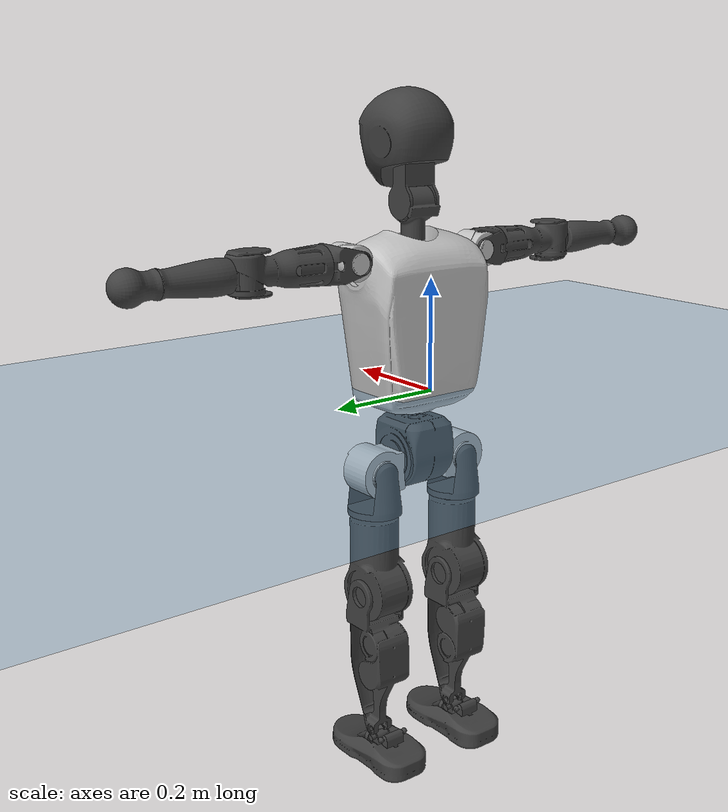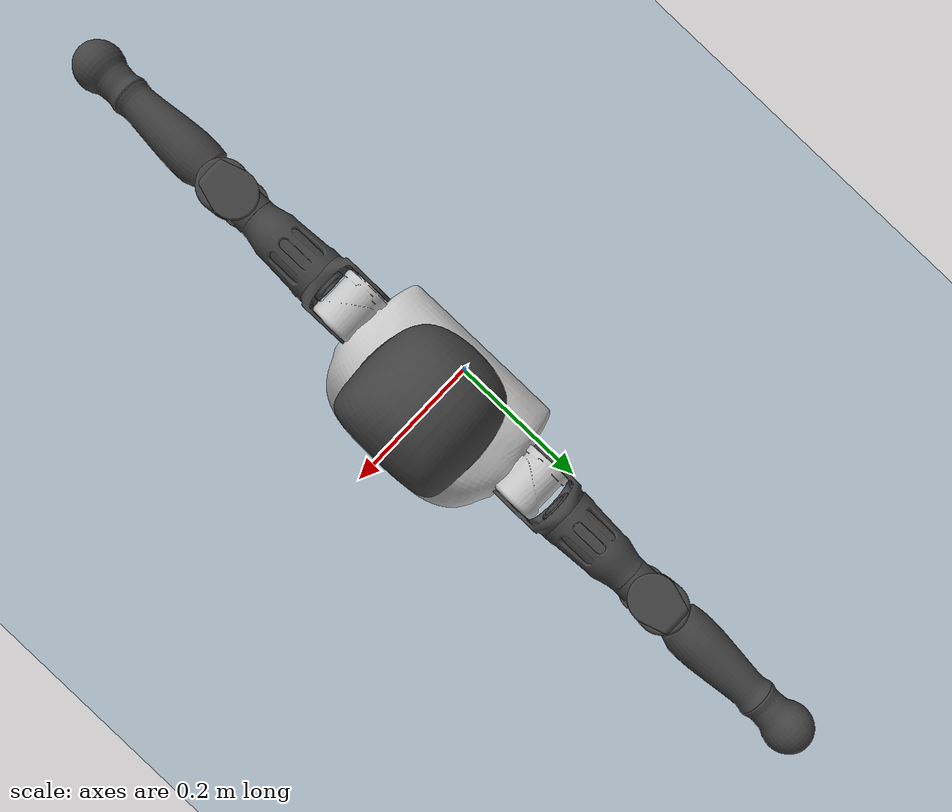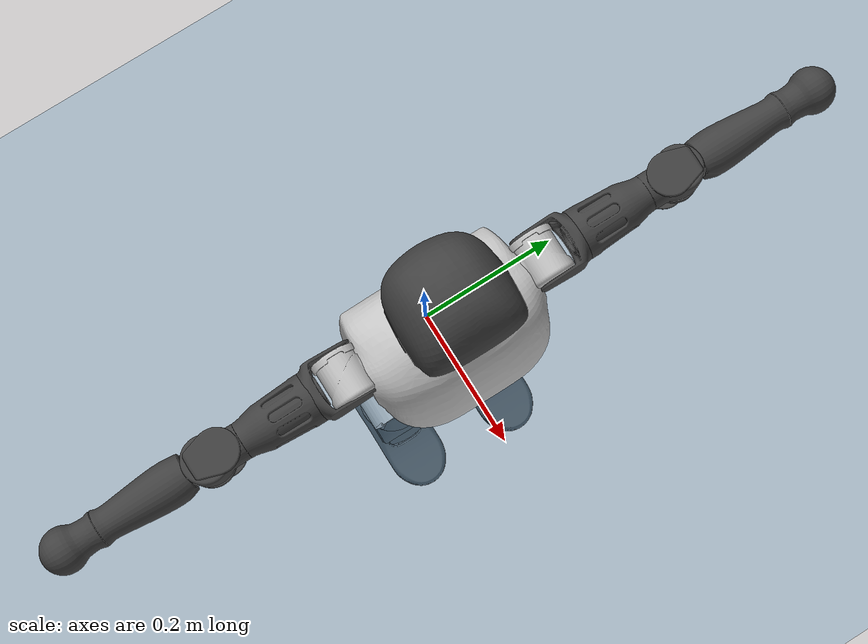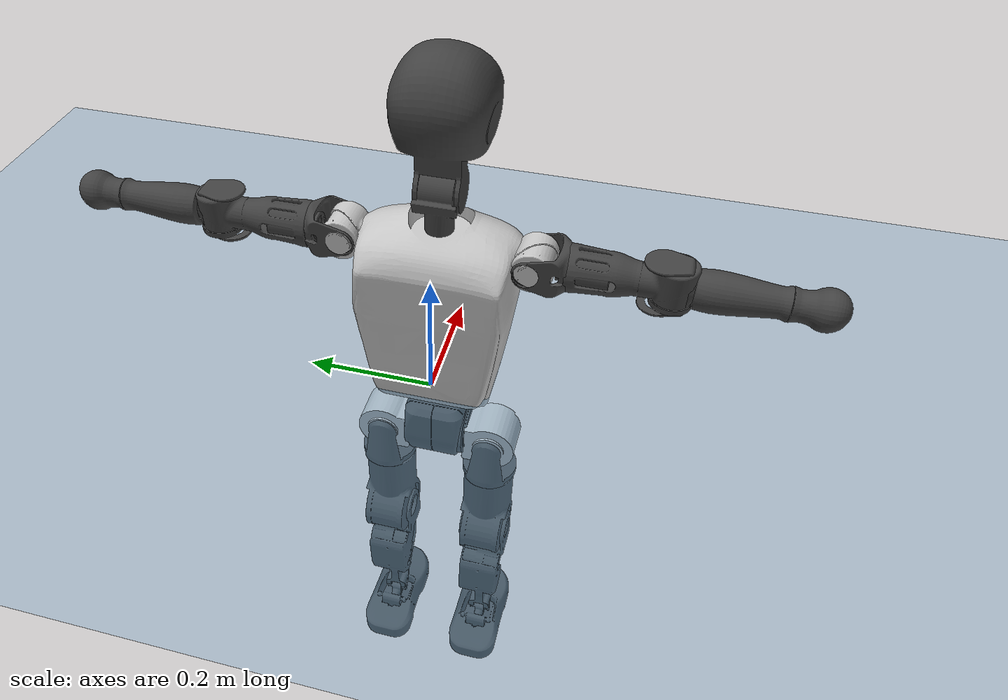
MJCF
<mujoco model="T1">
  <compiler angle="radian" assetdir="assets" balanceinertia="true" inertiafromgeom="false"/>

  <option timestep="0.005" density="1.2" viscosity="2e-05"/>

  <size nkey="1"/>

  <visual>
    <quality shadowsize="8192"/>
    <map shadowclip="0.5"/>
  </visual>

  <default>
    <default class="/">
      <joint armature="0.01" damping="0.01" frictionloss="0.1"/>
      <geom contype="0" conaffinity="0" group="1" solref="-1000 -80"/>
      <site size="0.01 0.005 0.005" group="5"/>
      <general forcelimited="true" biastype="affine" gainprm="25" biasprm="0 -25 -0.6"/>
      <default class="t1">
        <geom rgba="0.25 0.25 0.25 1"/>
        <default class="visual">
          <geom type="mesh" group="2"/>
        </default>
        <default class="collision">
          <geom group="3"/>
        </default>
        <default class="foot">
          <geom size="0.1115 0.05 0.015" type="box" condim="6" group="4" priority="1" solimp="0.015 1 0.015"/>
        </default>
        <default class="reward_collision_sphere">
          <geom group="5" rgba="1 0 0 1"/>
        </default>
      </default>
    </default>
  </default>

  <asset>
    <texture type="skybox" colorspace="auto" name="//unnamed_texture_0" builtin="gradient" rgb1="0.95 0.95 0.95" rgb2="0.95 0.95 0.95" width="100" height="600"/>
    <texture type="2d" colorspace="auto" name="texplane" builtin="checker" rgb1="0.345 0.575 0.748" rgb2="0.345 0.575 0.748" markrgb="1 1 1" width="512" height="512"/>
    <material name="MatPlane" class="/" texture="texplane" texuniform="true" texrepeat="2 2" specular="0.9"/>
    <mesh name="Trunk" class="/" file="Trunk.stl"/>
    <mesh name="H1" class="/" file="H1.stl"/>
    <mesh name="H2" class="/" file="H2.stl"/>
    <mesh name="AL1" class="/" file="AL1.stl"/>
    <mesh name="AL2" class="/" file="AL2.stl"/>
    <mesh name="AL3" class="/" file="AL3.stl"/>
    <mesh name="left_hand_link" class="/" file="left_hand_link.stl"/>
    <mesh name="AR1" class="/" file="AR1.stl"/>
    <mesh name="AR2" class="/" file="AR2.stl"/>
    <mesh name="AR3" class="/" file="AR3.stl"/>
    <mesh name="right_hand_link" class="/" file="right_hand_link.stl"/>
    <mesh name="Waist" class="/" file="Waist.stl"/>
    <mesh name="Hip_Pitch_Left" class="/" file="Hip_Pitch_Left.stl"/>
    <mesh name="Hip_Roll_Left" class="/" file="Hip_Roll_Left.stl"/>
    <mesh name="Hip_Yaw_Left" class="/" file="Hip_Yaw_Left.stl"/>
    <mesh name="Shank_Left" class="/" file="Shank_Left.stl"/>
    <mesh name="Ankle_Cross_Left" class="/" file="Ankle_Cross_Left.stl"/>
    <mesh name="left_foot_link" class="/" file="left_foot_link.stl"/>
    <mesh name="Hip_Pitch_Right" class="/" file="Hip_Pitch_Right.stl"/>
    <mesh name="Hip_Roll_Right" class="/" file="Hip_Roll_Right.stl"/>
    <mesh name="Hip_Yaw_Right" class="/" file="Hip_Yaw_Right.stl"/>
    <mesh name="Shank_Right" class="/" file="Shank_Right.stl"/>
    <mesh name="Ankle_Cross_Right" class="/" file="Ankle_Cross_Right.stl"/>
    <mesh name="right_foot_link" class="/" file="right_foot_link.stl"/>
  </asset>

  <worldbody>
    <geom name="floor" class="/" size="100 100 0.125" type="plane" group="0" material="MatPlane"/>
    <light name="toplight_shadow" class="/" pos="0 0 5" dir="0.0990148 0.0990148 -0.990148" type="directional" ambient="0.04 0.04 0.04" diffuse="0.55 0.55 0.55" specular="0.12 0.12 0.12"/>
    <light name="toplight_fill" class="/" pos="0 0 5" dir="0.0990148 0.0990148 -0.990148" type="directional" castshadow="false" ambient="0.04 0.04 0.04" diffuse="0.3 0.3 0.3" specular="0.08 0.08 0.08"/>
    <body name="trunk" childclass="t1" pos="7.33014e-05 -5.09849e-06 0.000222669" quat="1 -8.61752e-05 0.00013857 0.000177655">
      <inertial pos="0.0423605 -0.00104825 0.113056" quat="0.999957 -0.00112048 -0.00797849 -0.00450552" mass="8.81432" diaginertia="0.0269858 0.0402995 0.0777876"/>
      <joint name="//unnamed_joint_0" type="free" armature="0" damping="0" frictionloss="0"/>
      <geom name="//unnamed_geom_1" class="visual" rgba="0.76 0.76 0.76 1" mesh="Trunk"/>
      <geom name="//unnamed_geom_2" class="collision" size="0.068383 0.0911773 0.136766" pos="0.046961 0 0.128791" type="box"/>
      <geom name="//unnamed_geom_3" class="reward_collision_sphere" size="0.104854" pos="0.046961 0 0.107326"/>
      <geom name="//unnamed_geom_4" class="reward_collision_sphere" size="0.0136766" pos="0.046961 0.0747473 0"/>
      <geom name="//unnamed_geom_5" class="reward_collision_sphere" size="0.0136766" pos="0.046961 -0.0747473 0"/>
      <geom name="//unnamed_geom_6" class="reward_collision_sphere" size="0.0136766" pos="0.046961 0.0940936 0.193186"/>
      <geom name="//unnamed_geom_7" class="reward_collision_sphere" size="0.0136766" pos="0.046961 -0.0940936 0.193186"/>
      <site name="imu" pos="0.00800267 -0.00416001 -0.00457663" size="0.00911773"/>
      <camera name="track" pos="0 -1.75876 0" quat="0.707107 0.707107 0 0" mode="trackcom"/>
      <camera name="ego_camera" pos="0.0954874 0 0.450767" quat="-0.5 -0.5 0.5 0.5"/>
      <body name="H1" pos="0.0495015 0.000411088 0.260436" quat="1 0.000233056 0.000392397 -0.000168325">
        <inertial pos="-0.00144122 -0.00155312 0.0613216" quat="0.762526 -0.0132229 0.00210364 0.646819" mass="0.341668" diaginertia="7.16253e-05 0.000117745 0.000216627"/>
        <joint name="AAHead_yaw" pos="0 0 0" axis="0.000277696 4.19714e-05 1" stiffness="0.00185247" range="-1.58758 1.55826" armature="0.00912371" damping="0.00871256" frictionloss="0.0924311"/>
        <geom name="//unnamed_geom_8" class="visual" mesh="H1"/>
        <body name="H2" pos="-0.000565091 -0.00133261 0.0659796" quat="1 -0.000172186 1.18572e-06 8.68408e-07">
          <inertial pos="0.00688641 0.00188152 0.105261" quat="0.988692 0.103988 -0.0763782 -0.0764327" mass="0.486272" diaginertia="0.000590129 0.0010164 0.00243229"/>
          <joint name="Head_pitch" pos="0 0 0" axis="-0.000565721 -1 -0.00028016" range="-1.22034 0.341878" armature="0.00877073" damping="0.00789894" frictionloss="0.0912816"/>
          <geom name="//unnamed_geom_9" class="visual" mesh="H2"/>
          <geom name="//unnamed_geom_10" class="collision" size="0.0729418" pos="0.00782683 0 0.118058"/>
          <geom name="//unnamed_geom_11" class="reward_collision_sphere" size="0.0820596" pos="0.0156537 0 0.107326"/>
        </body>
      </body>
      <body name="AL1" pos="0.046397 0.0942797 0.236058" quat="1 -0.00023747 0.000488836 -0.000187222">
        <inertial pos="-0.00169025 0.0383455 0.00108465" quat="0.505423 0.491739 -0.505916 0.496779" mass="0.400649" diaginertia="0.000398594 0.000679622 0.000411104"/>
        <joint name="Left_Shoulder_Pitch" pos="0 0 0" axis="0.00184287 0.999997 -0.00170306" range="-3.32692 1.23027" armature="0.00924311" damping="0.0114227" frictionloss="0.0912907"/>
        <geom name="//unnamed_geom_12" class="visual" rgba="0.76 0.76 0.76 1" mesh="AL1"/>
        <body name="AL2" pos="0.00013215 0.0434992 -0.00017142" quat="1 -0.000817332 -0.000401795 0.000253194">
          <inertial pos="0.0016525 0.0336636 -0.00024513" quat="0.488134 0.513653 -0.486755 0.510838" mass="0.125812" diaginertia="0.000119166 0.000184752 0.000254278"/>
          <joint name="Left_Shoulder_Roll" pos="0 0 0" axis="-0.999988 -0.00368186 0.00317388" range="-1.56226 1.73158" armature="0.00869333" damping="0.00276258" frictionloss="0.0946616"/>
          <geom name="//unnamed_geom_13" class="visual" mesh="AL2"/>
          <body name="AL3" pos="-0.000153141 0.0547889 9.19182e-05" quat="1 0.000291621 0.000676526 -0.000105216">
            <inertial pos="0.000306832 0.0752518 -0.000313894" quat="0.706434 0.707776 -0.000558899 0.00203802" mass="0.784605" diaginertia="0.00382739 0.00681597 0.000907578"/>
            <joint name="Left_Elbow_Pitch" pos="0 0 0" axis="0.000468297 -0.999999 -0.00140785" range="-2.25405 2.2625" armature="0.00898127" damping="0.0113793" frictionloss="0.0899784"/>
            <geom name="//unnamed_geom_14" class="visual" mesh="AL3"/>
            <geom name="//unnamed_geom_15" class="collision" size="0.0273532 0.068383" pos="0 0.043969 0" quat="0.707105 0.707108 0 0" type="cylinder"/>
            <geom name="//unnamed_geom_16" class="reward_collision_sphere" size="0.0328238"/>
            <body name="left_hand_link" pos="0.000343836 0.131341 0.000327273" quat="1 -0.000205561 0.000387033 -0.000403925">
              <inertial pos="-0.000210793 0.0973023 -0.000493742" quat="0.705986 0.708218 -0.00259322 0.00233549" mass="0.242867" diaginertia="0.00231628 0.00416485 0.000302904"/>
              <joint name="Left_Elbow_Yaw" pos="0 0 0" axis="-0.00397361 -0.00557054 0.999977" range="-2.44745 0.00356081" armature="0.00920771" damping="0.0126841" frictionloss="0.0984276"/>
              <geom name="//unnamed_geom_17" class="visual" mesh="left_hand_link"/>
              <geom name="//unnamed_geom_18" class="collision" size="0.0273532 0.0797801" pos="0 0.114319 0" quat="0.707105 0.707108 0 0" type="cylinder"/>
              <geom name="//unnamed_geom_19" class="reward_collision_sphere" size="0.0455886"/>
              <geom name="//unnamed_geom_20" class="reward_collision_sphere" size="0.031912" pos="0 0.0967318 0"/>
              <geom name="//unnamed_geom_21" class="reward_collision_sphere" size="0.031912" pos="0 0.189067 0"/>
            </body>
          </body>
        </body>
      </body>
      <body name="AR1" pos="0.0438135 -0.092528 0.234996" quat="1 -1.43318e-05 0.000511315 0.000183345">
        <inertial pos="-0.000657895 -0.0397606 0.00050371" quat="0.504459 0.495681 -0.503738 0.496053" mass="0.394762" diaginertia="0.000398357 0.000676925 0.000416068"/>
        <joint name="Right_Shoulder_Pitch" pos="0 0 0" axis="-0.00303953 -0.999977 0.0061317" stiffness="0.00800046" range="-1.20081 3.29924" armature="0.0092376" damping="0.0107602" frictionloss="0.0908139"/>
        <geom name="//unnamed_geom_22" class="visual" rgba="0.76 0.76 0.76 1" mesh="AR1"/>
        <body name="AR2" pos="-0.00164151 -0.0401503 -0.000235333" quat="1 0.000311155 -9.09685e-05 -5.39138e-06">
          <inertial pos="0.00359981 -0.0342785 0.000696629" quat="0.509347 0.486709 -0.514576 0.488765" mass="0.120723" diaginertia="0.000115083 0.000175887 0.00024962"/>
          <joint name="Right_Shoulder_Roll" pos="0 0 0" axis="-0.999977 -0.00103683 -0.00666708" range="-1.75786 1.54734" armature="0.00897411" damping="0.00588128" frictionloss="0.0864718"/>
          <geom name="//unnamed_geom_23" class="visual" mesh="AR2"/>
          <body name="AR3" pos="0.000625316 -0.0517431 0.000451049" quat="1 -4.1147e-05 0.00015648 -8.93417e-05">
            <inertial pos="-0.000293917 -0.0749338 0.00043402" quat="0.71289 0.701257 -0.00120365 0.00503121" mass="0.78365" diaginertia="0.0038305 0.00669809 0.000886609"/>
            <joint name="Right_Elbow_Pitch" pos="0 0 0" axis="0.000159456 1 0.000264144" stiffness="0.00309737" range="-2.27311 2.26772" armature="0.00893411" damping="0.0055069" frictionloss="0.0971101"/>
            <geom name="//unnamed_geom_24" class="visual" mesh="AR3"/>
            <geom name="//unnamed_geom_25" class="collision" size="0.0273532 0.068383" pos="0 -0.043969 0" quat="0.707105 0.707108 0 0" type="cylinder"/>
            <geom name="//unnamed_geom_26" class="reward_collision_sphere" size="0.0328238"/>
            <body name="right_hand_link" pos="-0.0013692 -0.130005 -0.000937827" quat="1 8.43297e-06 -0.000359521 0.000119489">
              <inertial pos="-0.000193765 -0.0965265 0.00203348" quat="0.709148 0.705054 0.00273707 0.000985459" mass="0.244771" diaginertia="0.00236835 0.00418325 0.000301058"/>
              <joint name="Right_Elbow_Yaw" pos="0 0 0" axis="0.00455525 0.000943932 0.999989" range="-0.00760197 2.44037" armature="0.00989004" damping="0.0065834" frictionloss="0.0916852"/>
              <geom name="//unnamed_geom_27" class="visual" mesh="right_hand_link"/>
              <geom name="//unnamed_geom_28" class="collision" size="0.0273532 0.0797801" pos="0 -0.114319 0" quat="0.707105 0.707108 0 0" type="cylinder"/>
              <geom name="//unnamed_geom_29" class="reward_collision_sphere" size="0.0455886"/>
              <geom name="//unnamed_geom_30" class="reward_collision_sphere" size="0.031912" pos="0 -0.0967318 0"/>
              <geom name="//unnamed_geom_31" class="reward_collision_sphere" size="0.031912" pos="0 -0.189067 0"/>
            </body>
          </body>
        </body>
      </body>
      <body name="Waist" pos="0.0490605 -0.00211113 -0.124011" quat="1 -3.99429e-06 -0.000149491 -0.000108527">
        <inertial pos="0.00277215 -0.000510685 0.00831586" quat="0.982779 0.000380646 -0.184754 0.00321947" mass="1.93871" diaginertia="0.00157275 0.00273448 0.00676912"/>
        <joint name="Waist" pos="0 0 0" axis="0.000392182 0.00239271 0.999997" range="-1.53809 1.55177" armature="0.00884955" damping="0.011435" frictionloss="0.0890874"/>
        <geom name="//unnamed_geom_32" class="visual" mesh="Waist"/>
        <body name="Hip_Pitch_Left" pos="-0.000535995 0.0933929 0.000238725" quat="1 0.000112747 -0.000483095 6.24231e-06">
          <inertial pos="0.00124822 -0.00520195 -0.0196287" quat="0.97515 0.221055 0.0146547 0.00134914" mass="0.777395" diaginertia="0.00053238 0.000790059 0.00180069"/>
          <joint name="Left_Hip_Pitch" pos="0 0 0" axis="0.000124028 0.999999 -0.00126896" range="-1.80466 1.56131" armature="0.00916965" damping="0.004976" frictionloss="0.0913251"/>
          <geom name="//unnamed_geom_33" class="visual" rgba="0.76 0.76 0.76 1" mesh="Hip_Pitch_Left"/>
          <body name="Hip_Roll_Left" pos="-0.000410217 -9.16393e-05 -0.020847" quat="1 -0.000103223 0.000111168 -3.74485e-06">
            <inertial pos="0.00126505 6.86881e-05 -0.0570453" quat="0.708011 -0.00612458 -0.00673919 0.706142" mass="0.290083" diaginertia="0.000509561 0.000785887 0.000723617"/>
            <joint name="Left_Hip_Roll" pos="0 0 0" axis="-0.999996 0.00265354 -0.000199173" range="-1.57481 0.21062" armature="0.00905709" damping="0.00842144" frictionloss="0.0922557"/>
            <geom name="//unnamed_geom_34" class="visual" mesh="Hip_Roll_Left"/>
            <geom name="//unnamed_geom_35" class="reward_collision_sphere" size="0.0501475"/>
            <body name="Hip_Yaw_Left" pos="0.00172565 -0.0011692 -0.0882948" quat="1 2.68664e-05 0.000203762 -0.000236062">
              <inertial pos="-0.00602924 -0.000237562 -0.0952529" quat="0.700048 -0.0369236 -0.0369333 0.712183" mass="1.66086" diaginertia="0.00760428 0.0130261 0.00364898"/>
              <joint name="Left_Hip_Yaw" pos="0 0 0" axis="-0.00111495 0.000324689 -0.999999" range="-1.01006 1.01806" armature="0.00906891" damping="0.0140054" frictionloss="0.0911206"/>
              <geom name="//unnamed_geom_36" class="visual" mesh="Hip_Yaw_Left"/>
              <geom name="//unnamed_geom_37" class="collision" size="0.0455886 0.0729418" type="cylinder"/>
              <body name="Shank_Left" pos="-0.00912248 9.74139e-05 -0.143386" quat="1 -2.71447e-05 0.000184191 0.00035896">
                <inertial pos="-0.00427943 -0.000236337 -0.133462" quat="0.997564 0.0019464 -0.0235197 0.0656405" mass="1.28936" diaginertia="0.010231 0.0179159 0.00262321"/>
                <joint name="Left_Knee_Pitch" pos="0 0 0" axis="-0.00407882 0.999987 0.00319751" range="-0.0164533 2.34596" armature="0.00899162" damping="0.00677085" frictionloss="0.0941932"/>
                <geom name="//unnamed_geom_38" class="visual" mesh="Shank_Left"/>
                <geom name="//unnamed_geom_39" class="collision" size="0.0455886 0.068383" pos="0 0 -0.128791" type="cylinder"/>
                <geom name="//unnamed_geom_40" class="reward_collision_sphere" size="0.0592652"/>
                <body name="Ankle_Cross_Left" pos="6.16023e-05 7.21186e-05 -0.300653" quat="1 0.000261643 -0.000199879 -0.000228743">
                  <inertial pos="-0.00322782 -0.000708985 -0.0102803" quat="0.441192 0.549372 0.553997 0.443427" mass="0.0563154" diaginertia="8.70018e-06 1.37204e-05 1.64972e-05"/>
                  <joint name="Left_Ankle_Pitch" pos="0 0 0" axis="-0.000316008 0.999993 0.00375856" stiffness="0.00107653" range="-0.904822 0.334003" armature="0.00953073" damping="0.00340109" frictionloss="0.0948192"/>
                  <geom name="//unnamed_geom_41" class="visual" mesh="Ankle_Cross_Left"/>
                  <body name="left_foot_link" pos="-0.000387201 -0.000196182 -0.0147107" quat="1 0.000285699 -1.87061e-05 -9.6402e-05">
                    <inertial pos="0.000451699 -0.00105531 -0.00970165" quat="4.06698e-05 0.620502 -0.001468 0.784204" mass="0.526153" diaginertia="0.00079006 0.00125734 0.00309661"/>
                    <joint name="Left_Ankle_Roll" pos="0 0 0" axis="-0.999999 0.000753522 0.00148644" range="-0.431813 0.458357" armature="0.00901297" damping="0.0147141" frictionloss="0.0934599"/>
                    <geom name="//unnamed_geom_42" class="visual" mesh="left_foot_link"/>
                    <geom name="left_foot" class="foot" size="0.100074 0.0491188 0.0135166" pos="0.00782683 0 -0.0160988"/>
                    <geom name="//unnamed_geom_44" class="reward_collision_sphere" size="0.0474122" pos="0.00782683 0 -0.0160988"/>
                    <geom name="//unnamed_geom_45" class="reward_collision_sphere" size="0.0273532" pos="0.0743549 -0.0202257 -0.0160988"/>
                    <geom name="//unnamed_geom_46" class="reward_collision_sphere" size="0.0273532" pos="-0.0547878 -0.0202257 -0.0160988"/>
                    <site name="left_foot" class="foot" pos="0.00782683 0 -0.0160988" size="0.00911773"/>
                  </body>
                </body>
              </body>
            </body>
          </body>
        </body>
        <body name="Hip_Pitch_Right" pos="9.19189e-05 -0.0928327 0.000231858" quat="1 5.89763e-05 -9.19456e-07 3.00715e-05">
          <inertial pos="0.000282732 0.0060087 -0.0178737" quat="0.973197 -0.229247 0.0171301 -0.00630067" mass="0.770465" diaginertia="0.000528281 0.000767506 0.00177545"/>
          <joint name="Right_Hip_Pitch" pos="0 0 0" axis="-0.000582225 -1 0.000518271" range="-1.56967 1.79779" armature="0.00933865" damping="0.00953875" frictionloss="0.0874967"/>
          <geom name="//unnamed_geom_47" class="visual" rgba="0.76 0.76 0.76 1" mesh="Hip_Pitch_Right"/>
          <body name="Hip_Roll_Right" pos="-0.0015906 0.000950417 -0.0222122" quat="0.999999 -2.1891e-05 -0.000717055 -0.000715887">
            <inertial pos="0.00284914 -0.000638522 -0.0572101" quat="0.707555 -0.00690864 -0.00525586 0.706605" mass="0.292095" diaginertia="0.000514101 0.000796207 0.000731992"/>
            <joint name="Right_Hip_Roll" pos="0 0 0" axis="-0.999997 -0.00224378 7.15368e-05" range="-0.19611 1.57576" armature="0.00932739" damping="0.00887116" frictionloss="0.091517"/>
            <geom name="//unnamed_geom_48" class="visual" mesh="Hip_Roll_Right"/>
            <geom name="//unnamed_geom_49" class="reward_collision_sphere" size="0.0501475"/>
            <body name="Hip_Yaw_Right" pos="0.000148346 3.07895e-07 -0.0878815" quat="1 0.000527036 -0.000506641 8.85389e-05">
              <inertial pos="-0.005917 -0.000688949 -0.0964245" quat="0.715407 -0.0307896 -0.0352204 0.697141" mass="1.64585" diaginertia="0.00774914 0.0137651 0.00369201"/>
              <joint name="Right_Hip_Yaw" pos="0 0 0" axis="-0.00174358 0.00119705 -0.999998" range="-0.995187 0.972593" armature="0.00916868" damping="0.00956413" frictionloss="0.086424"/>
              <geom name="//unnamed_geom_50" class="visual" mesh="Hip_Yaw_Right"/>
              <geom name="//unnamed_geom_51" class="collision" size="0.0455886 0.0729418" type="cylinder"/>
              <body name="Shank_Right" pos="-0.0116955 -0.000851821 -0.14364" quat="1 -4.79175e-05 -0.000219193 0.000361177">
                <inertial pos="-0.00405996 -0.000889415 -0.131961" quat="0.999237 0.000808179 -0.0242906 -0.0305735" mass="1.37596" diaginertia="0.0103335 0.0180975 0.00277873"/>
                <joint name="Right_Knee_Pitch" pos="0 0 0" axis="-0.00450117 -0.999986 -0.00274659" range="-2.33322 -0.00300643" armature="0.00929631" damping="0.00456126" frictionloss="0.0868239"/>
                <geom name="//unnamed_geom_52" class="visual" mesh="Shank_Right"/>
                <geom name="//unnamed_geom_53" class="collision" size="0.0455886 0.068383" pos="0 0 -0.128791" type="cylinder"/>
                <geom name="//unnamed_geom_54" class="reward_collision_sphere" size="0.0592652"/>
                <body name="Ankle_Cross_Right" pos="0.00163104 -0.00109729 -0.300596" quat="1 -0.000196932 -6.04664e-05 0.000385992">
                  <inertial pos="-0.00281298 0.000540783 -0.00892071" quat="0.442947 0.55468 0.54809 0.442409" mass="0.0548764" diaginertia="8.54236e-06 1.35181e-05 1.60848e-05"/>
                  <joint name="Right_Ankle_Pitch" pos="0 0 0" axis="-0.00424865 -0.999952 0.0088022" range="-0.353696 0.873905" armature="0.0092419" damping="0.00763027" frictionloss="0.083619"/>
                  <geom name="//unnamed_geom_55" class="visual" mesh="Ankle_Cross_Right"/>
                  <body name="right_foot_link" pos="0.000617269 -0.000139763 -0.0137716" quat="1 0.000217838 0.000363401 0.000113576">
                    <inertial pos="-0.00030271 0.000377777 -0.0104201" quat="-0.00149454 0.61974 0.00139011 0.784804" mass="0.516799" diaginertia="0.000787081 0.00124793 0.00311609"/>
                    <joint name="Right_Ankle_Roll" pos="0 0 0" axis="-0.999994 0.000906273 0.00335148" range="-0.404862 0.420621" armature="0.00911754" damping="0.00885507" frictionloss="0.0929844"/>
                    <geom name="//unnamed_geom_56" class="visual" mesh="right_foot_link"/>
                    <geom name="right_foot" class="foot" size="0.0925661 0.0455875 0.0136682" pos="0.00782683 0 -0.0160988"/>
                    <geom name="//unnamed_geom_58" class="reward_collision_sphere" size="0.0364709"/>
                    <geom name="//unnamed_geom_59" class="reward_collision_sphere" size="0.0273532" pos="0.00782683 0 -0.0160988"/>
                    <geom name="//unnamed_geom_60" class="reward_collision_sphere" size="0.0273532" pos="0.0743549 0.0202257 -0.0160988"/>
                    <geom name="//unnamed_geom_61" class="reward_collision_sphere" size="0.0273532" pos="-0.0547878 0.0202257 -0.0160988"/>
                    <site name="right_foot" class="foot" pos="0.00782683 0 -0.0160988" size="0.00911773"/>
                  </body>
                </body>
              </body>
            </body>
          </body>
        </body>
      </body>
    </body>
  </worldbody>

  <contact>
    <pair class="/" geom1="floor" geom2="left_foot" name="//unnamed_contact_0"/>
    <pair class="/" geom1="floor" geom2="right_foot" name="//unnamed_contact_1"/>
  </contact>

  <actuator>
    <general name="AAHead_yaw" class="/" joint="AAHead_yaw" forcerange="-6.61689 6.61689" gainprm="22.851" biasprm="0 -22.851 -0.518276"/>
    <general name="Head_pitch" class="/" joint="Head_pitch" forcerange="-6.50644 6.50644" gainprm="22.851" biasprm="0 -22.851 -0.518276"/>
    <general name="Left_Shoulder_Pitch" class="/" joint="Left_Shoulder_Pitch" forcerange="-16.5536 16.5536" gainprm="22.851" biasprm="0 -22.851 -0.518276"/>
    <general name="Left_Shoulder_Roll" class="/" joint="Left_Shoulder_Roll" forcerange="-16.2541 16.2541" gainprm="22.851" biasprm="0 -22.851 -0.518276"/>
    <general name="Left_Elbow_Pitch" class="/" joint="Left_Elbow_Pitch" forcerange="-16.7983 16.7983" gainprm="22.851" biasprm="0 -22.851 -0.518276"/>
    <general name="Left_Elbow_Yaw" class="/" joint="Left_Elbow_Yaw" forcerange="-16.2865 16.2865" gainprm="22.851" biasprm="0 -22.851 -0.518276"/>
    <general name="Right_Shoulder_Pitch" class="/" joint="Right_Shoulder_Pitch" forcerange="-16.3043 16.3043" gainprm="22.851" biasprm="0 -22.851 -0.518276"/>
    <general name="Right_Shoulder_Roll" class="/" joint="Right_Shoulder_Roll" forcerange="-16.406 16.406" gainprm="22.851" biasprm="0 -22.851 -0.518276"/>
    <general name="Right_Elbow_Pitch" class="/" joint="Right_Elbow_Pitch" forcerange="-16.6856 16.6856" gainprm="22.851" biasprm="0 -22.851 -0.518276"/>
    <general name="Right_Elbow_Yaw" class="/" joint="Right_Elbow_Yaw" forcerange="-16.7236 16.7236" gainprm="22.851" biasprm="0 -22.851 -0.518276"/>
    <general name="Waist" class="/" joint="Waist" forcerange="-26.5068 26.5068" gainprm="22.851" biasprm="0 -22.851 -0.518276"/>
    <general name="Left_Hip_Pitch" class="/" joint="Left_Hip_Pitch" forcerange="-38.3449 38.3449" gainprm="22.851" biasprm="0 -22.851 -0.518276"/>
    <general name="Left_Hip_Roll" class="/" joint="Left_Hip_Roll" forcerange="-27.4932 27.4932" gainprm="22.851" biasprm="0 -22.851 -0.518276"/>
    <general name="Left_Hip_Yaw" class="/" joint="Left_Hip_Yaw" forcerange="-26.6966 26.6966" gainprm="22.851" biasprm="0 -22.851 -0.518276"/>
    <general name="Left_Knee_Pitch" class="/" joint="Left_Knee_Pitch" forcerange="-55.6743 55.6743" gainprm="22.851" biasprm="0 -22.851 -0.518276"/>
    <general name="Left_Ankle_Pitch" class="/" joint="Left_Ankle_Pitch" forcerange="-18.5034 18.5034" gainprm="22.851" biasprm="0 -22.851 -0.518276"/>
    <general name="Left_Ankle_Roll" class="/" joint="Left_Ankle_Roll" forcerange="-13.5956 13.5956" gainprm="22.851" biasprm="0 -22.851 -0.518276"/>
    <general name="Right_Hip_Pitch" class="/" joint="Right_Hip_Pitch" forcerange="-43.0828 43.0828" gainprm="22.851" biasprm="0 -22.851 -0.518276"/>
    <general name="Right_Hip_Roll" class="/" joint="Right_Hip_Roll" forcerange="-27.3296 27.3296" gainprm="22.851" biasprm="0 -22.851 -0.518276"/>
    <general name="Right_Hip_Yaw" class="/" joint="Right_Hip_Yaw" forcerange="-26.7185 26.7185" gainprm="22.851" biasprm="0 -22.851 -0.518276"/>
    <general name="Right_Knee_Pitch" class="/" joint="Right_Knee_Pitch" forcerange="-53.2037 53.2037" gainprm="22.851" biasprm="0 -22.851 -0.518276"/>
    <general name="Right_Ankle_Pitch" class="/" joint="Right_Ankle_Pitch" forcerange="-18.8864 18.8864" gainprm="22.851" biasprm="0 -22.851 -0.518276"/>
    <general name="Right_Ankle_Roll" class="/" joint="Right_Ankle_Roll" forcerange="-13.0086 13.0086" gainprm="22.851" biasprm="0 -22.851 -0.518276"/>
  </actuator>

  <sensor>
    <gyro site="imu" name="imu_angular_velocity"/>
    <velocimeter site="imu" name="imu_linear_velocity"/>
    <framelinvel objtype="site" objname="left_foot" name="left_foot_global_linear_velocity"/>
    <framelinvel objtype="site" objname="right_foot" name="right_foot_global_linear_velocity"/>
  </sensor>

  <keyframe>
    <key name="home" qpos="0 0 0.6385 1 0 0 0 0 0 0 1.4 0 -0.4 0 -1.4 0 0.4 0 -0.4 0 0 0.8 -0.4 0 0.4 0 0 -0.8 0.4 0"/>
  </keyframe>
</mujoco>
